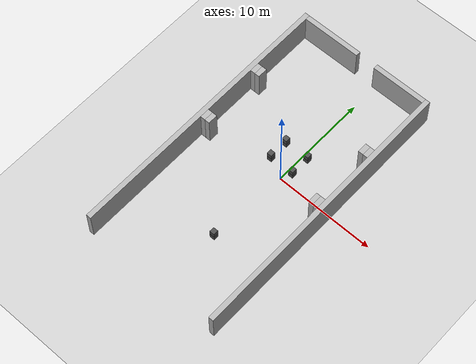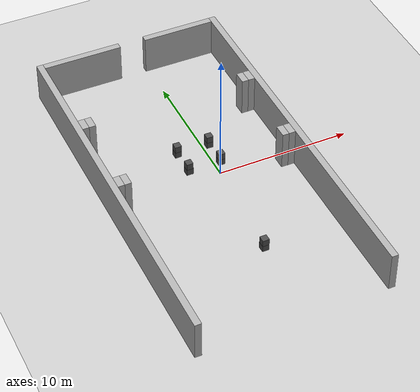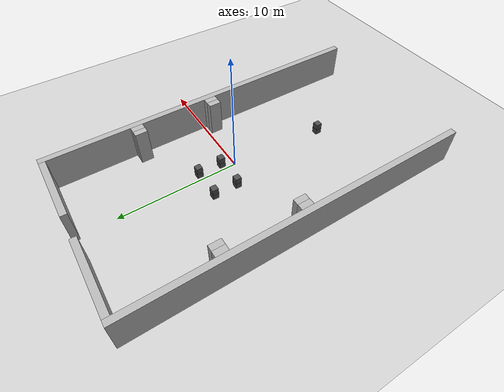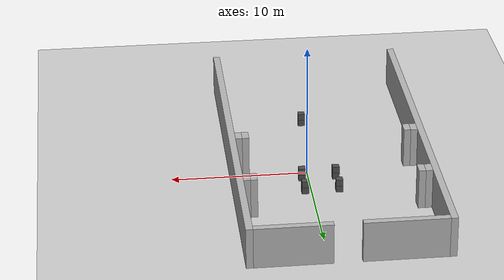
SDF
<sdf version="1.6">
 <world name="default">
  <include><uri>model://ground_plane</uri></include>
  <model name="wall_0">
   <pose frame="sim_world">-8.5 -0.75 1.5 0 0 0</pose>
   <static>True</static>
   <link name="wall_0_link">
    <inertial>
     <mass>100</mass>
     <inertia>
      <ixx>0.166667</ixx>
      <ixy>0</ixy>
      <ixz>0</ixz>
      <iyy>0.166667</iyy>
      <iyz>0</iyz>
      <izz>0.166667</izz>
     </inertia>
    </inertial>
    <collision name="wall_0_collision">
     <geometry><box><size>0.5 28.0 3.0</size></box></geometry>
     <max_contacts>100</max_contacts>
    </collision>
    <visual name="wall_0_visual">
     <geometry><box><size>0.5 28.0 3.0</size></box></geometry>
     <material><ambient>0.7 0.7 0.7 1</ambient><diffuse>0.7 0.7 0.7 1</diffuse></material>
    </visual>
   </link>
  </model>
  <model name="wall_2">
   <pose frame="sim_world">-8.0 -0.75 1.5 0 0 0</pose>
   <static>True</static>
   <link name="wall_2_link">
    <inertial>
     <mass>100</mass>
     <inertia>
      <ixx>0.166667</ixx>
      <ixy>0</ixy>
      <ixz>0</ixz>
      <iyy>0.166667</iyy>
      <iyz>0</iyz>
      <izz>0.166667</izz>
     </inertia>
    </inertial>
    <collision name="wall_2_collision">
     <geometry><box><size>0.5 1.0 3.0</size></box></geometry>
     <max_contacts>100</max_contacts>
    </collision>
    <visual name="wall_2_visual">
     <geometry><box><size>0.5 1.0 3.0</size></box></geometry>
     <material><ambient>0.7 0.7 0.7 1</ambient><diffuse>0.7 0.7 0.7 1</diffuse></material>
    </visual>
   </link>
  </model>
  <model name="wall_3">
   <pose frame="sim_world">-8.0 5.75 1.5 0 0 0</pose>
   <static>True</static>
   <link name="wall_3_link">
    <inertial>
     <mass>100</mass>
     <inertia>
      <ixx>0.166667</ixx>
      <ixy>0</ixy>
      <ixz>0</ixz>
      <iyy>0.166667</iyy>
      <iyz>0</iyz>
      <izz>0.166667</izz>
     </inertia>
    </inertial>
    <collision name="wall_3_collision">
     <geometry><box><size>0.5 1.0 3.0</size></box></geometry>
     <max_contacts>100</max_contacts>
    </collision>
    <visual name="wall_3_visual">
     <geometry><box><size>0.5 1.0 3.0</size></box></geometry>
     <material><ambient>0.7 0.7 0.7 1</ambient><diffuse>0.7 0.7 0.7 1</diffuse></material>
    </visual>
   </link>
  </model>
  <model name="wall_5">
   <pose frame="sim_world">-7.5 -0.75 1.5 0 0 0</pose>
   <static>True</static>
   <link name="wall_5_link">
    <inertial>
     <mass>100</mass>
     <inertia>
      <ixx>0.166667</ixx>
      <ixy>0</ixy>
      <ixz>0</ixz>
      <iyy>0.166667</iyy>
      <iyz>0</iyz>
      <izz>0.166667</izz>
     </inertia>
    </inertial>
    <collision name="wall_5_collision">
     <geometry><box><size>0.5 1.0 3.0</size></box></geometry>
     <max_contacts>100</max_contacts>
    </collision>
    <visual name="wall_5_visual">
     <geometry><box><size>0.5 1.0 3.0</size></box></geometry>
     <material><ambient>0.7 0.7 0.7 1</ambient><diffuse>0.7 0.7 0.7 1</diffuse></material>
    </visual>
   </link>
  </model>
  <model name="wall_6">
   <pose frame="sim_world">-7.5 5.75 1.5 0 0 0</pose>
   <static>True</static>
   <link name="wall_6_link">
    <inertial>
     <mass>100</mass>
     <inertia>
      <ixx>0.166667</ixx>
      <ixy>0</ixy>
      <ixz>0</ixz>
      <iyy>0.166667</iyy>
      <iyz>0</iyz>
      <izz>0.166667</izz>
     </inertia>
    </inertial>
    <collision name="wall_6_collision">
     <geometry><box><size>0.5 1.0 3.0</size></box></geometry>
     <max_contacts>100</max_contacts>
    </collision>
    <visual name="wall_6_visual">
     <geometry><box><size>0.5 1.0 3.0</size></box></geometry>
     <material><ambient>0.7 0.7 0.7 1</ambient><diffuse>0.7 0.7 0.7 1</diffuse></material>
    </visual>
   </link>
  </model>
  <model name="wall_8">
   <pose frame="sim_world">4.5 -0.75 1.5 0 0 0</pose>
   <static>True</static>
   <link name="wall_8_link">
    <inertial>
     <mass>100</mass>
     <inertia>
      <ixx>0.166667</ixx>
      <ixy>0</ixy>
      <ixz>0</ixz>
      <iyy>0.166667</iyy>
      <iyz>0</iyz>
      <izz>0.166667</izz>
     </inertia>
    </inertial>
    <collision name="wall_8_collision">
     <geometry><box><size>0.5 1.0 3.0</size></box></geometry>
     <max_contacts>100</max_contacts>
    </collision>
    <visual name="wall_8_visual">
     <geometry><box><size>0.5 1.0 3.0</size></box></geometry>
     <material><ambient>0.7 0.7 0.7 1</ambient><diffuse>0.7 0.7 0.7 1</diffuse></material>
    </visual>
   </link>
  </model>
  <model name="wall_9">
   <pose frame="sim_world">4.5 5.75 1.5 0 0 0</pose>
   <static>True</static>
   <link name="wall_9_link">
    <inertial>
     <mass>100</mass>
     <inertia>
      <ixx>0.166667</ixx>
      <ixy>0</ixy>
      <ixz>0</ixz>
      <iyy>0.166667</iyy>
      <iyz>0</iyz>
      <izz>0.166667</izz>
     </inertia>
    </inertial>
    <collision name="wall_9_collision">
     <geometry><box><size>0.5 1.0 3.0</size></box></geometry>
     <max_contacts>100</max_contacts>
    </collision>
    <visual name="wall_9_visual">
     <geometry><box><size>0.5 1.0 3.0</size></box></geometry>
     <material><ambient>0.7 0.7 0.7 1</ambient><diffuse>0.7 0.7 0.7 1</diffuse></material>
    </visual>
   </link>
  </model>
  <model name="wall_11">
   <pose frame="sim_world">5.0 -0.75 1.5 0 0 0</pose>
   <static>True</static>
   <link name="wall_11_link">
    <inertial>
     <mass>100</mass>
     <inertia>
      <ixx>0.166667</ixx>
      <ixy>0</ixy>
      <ixz>0</ixz>
      <iyy>0.166667</iyy>
      <iyz>0</iyz>
      <izz>0.166667</izz>
     </inertia>
    </inertial>
    <collision name="wall_11_collision">
     <geometry><box><size>0.5 1.0 3.0</size></box></geometry>
     <max_contacts>100</max_contacts>
    </collision>
    <visual name="wall_11_visual">
     <geometry><box><size>0.5 1.0 3.0</size></box></geometry>
     <material><ambient>0.7 0.7 0.7 1</ambient><diffuse>0.7 0.7 0.7 1</diffuse></material>
    </visual>
   </link>
  </model>
  <model name="wall_12">
   <pose frame="sim_world">5.0 5.75 1.5 0 0 0</pose>
   <static>True</static>
   <link name="wall_12_link">
    <inertial>
     <mass>100</mass>
     <inertia>
      <ixx>0.166667</ixx>
      <ixy>0</ixy>
      <ixz>0</ixz>
      <iyy>0.166667</iyy>
      <iyz>0</iyz>
      <izz>0.166667</izz>
     </inertia>
    </inertial>
    <collision name="wall_12_collision">
     <geometry><box><size>0.5 1.0 3.0</size></box></geometry>
     <max_contacts>100</max_contacts>
    </collision>
    <visual name="wall_12_visual">
     <geometry><box><size>0.5 1.0 3.0</size></box></geometry>
     <material><ambient>0.7 0.7 0.7 1</ambient><diffuse>0.7 0.7 0.7 1</diffuse></material>
    </visual>
   </link>
  </model>
  <model name="wall_13">
   <pose frame="sim_world">5.5 -0.75 1.5 0 0 0</pose>
   <static>True</static>
   <link name="wall_13_link">
    <inertial>
     <mass>100</mass>
     <inertia>
      <ixx>0.166667</ixx>
      <ixy>0</ixy>
      <ixz>0</ixz>
      <iyy>0.166667</iyy>
      <iyz>0</iyz>
      <izz>0.166667</izz>
     </inertia>
    </inertial>
    <collision name="wall_13_collision">
     <geometry><box><size>0.5 28.0 3.0</size></box></geometry>
     <max_contacts>100</max_contacts>
    </collision>
    <visual name="wall_13_visual">
     <geometry><box><size>0.5 28.0 3.0</size></box></geometry>
     <material><ambient>0.7 0.7 0.7 1</ambient><diffuse>0.7 0.7 0.7 1</diffuse></material>
    </visual>
   </link>
  </model>
  <model name="wall_15">
   <pose frame="sim_world">-5.25 13.0 1.5 0 0 0</pose>
   <static>True</static>
   <link name="wall_15_link">
    <inertial>
     <mass>100</mass>
     <inertia>
      <ixx>0.166667</ixx>
      <ixy>0</ixy>
      <ixz>0</ixz>
      <iyy>0.166667</iyy>
      <iyz>0</iyz>
      <izz>0.166667</izz>
     </inertia>
    </inertial>
    <collision name="wall_15_collision">
     <geometry><box><size>6.0 0.5 3.0</size></box></geometry>
     <max_contacts>100</max_contacts>
    </collision>
    <visual name="wall_15_visual">
     <geometry><box><size>6.0 0.5 3.0</size></box></geometry>
     <material><ambient>0.7 0.7 0.7 1</ambient><diffuse>0.7 0.7 0.7 1</diffuse></material>
    </visual>
   </link>
  </model>
  <model name="wall_16">
   <pose frame="sim_world">2.5 13.0 1.5 0 0 0</pose>
   <static>True</static>
   <link name="wall_16_link">
    <inertial>
     <mass>100</mass>
     <inertia>
      <ixx>0.166667</ixx>
      <ixy>0</ixy>
      <ixz>0</ixz>
      <iyy>0.166667</iyy>
      <iyz>0</iyz>
      <izz>0.166667</izz>
     </inertia>
    </inertial>
    <collision name="wall_16_collision">
     <geometry><box><size>5.5 0.5 3.0</size></box></geometry>
     <max_contacts>100</max_contacts>
    </collision>
    <visual name="wall_16_visual">
     <geometry><box><size>5.5 0.5 3.0</size></box></geometry>
     <material><ambient>0.7 0.7 0.7 1</ambient><diffuse>0.7 0.7 0.7 1</diffuse></material>
    </visual>
   </link>
  </model>
  <model name="box_0">
   <pose frame="sim_world">-2.0 1.0 0.25 0 -0 0</pose>
   <static>True</static>
   <link name="box_0_link">
    <inertial>
     <mass>100</mass>
     <inertia>
      <ixx>0.166667</ixx>
      <ixy>0</ixy>
      <ixz>0</ixz>
      <iyy>0.166667</iyy>
      <iyz>0</iyz>
      <izz>0.166667</izz>
     </inertia>
    </inertial>
    <collision name="box_0_collision">
     <geometry><box><size>0.5 0.5 0.5</size></box></geometry>
     <max_contacts>100</max_contacts>
    </collision>
    <visual name="box_0_visual">
     <geometry><box><size>0.5 0.5 0.5</size></box></geometry>
     <material><ambient>0.3 0.3 0.3 1</ambient><diffuse>0.3 0.3 0.3 1</diffuse></material>
    </visual>
   </link>
  </model>
  <model name="box_1">
   <pose frame="sim_world">-2.0 1.0 0.75 0 -0 0</pose>
   <static>True</static>
   <link name="box_1_link">
    <inertial>
     <mass>100</mass>
     <inertia>
      <ixx>0.166667</ixx>
      <ixy>0</ixy>
      <ixz>0</ixz>
      <iyy>0.166667</iyy>
      <iyz>0</iyz>
      <izz>0.166667</izz>
     </inertia>
    </inertial>
    <collision name="box_1_collision">
     <geometry><box><size>0.5 0.5 0.5</size></box></geometry>
     <max_contacts>100</max_contacts>
    </collision>
    <visual name="box_1_visual">
     <geometry><box><size>0.5 0.5 0.5</size></box></geometry>
     <material><ambient>0.3 0.3 0.3 1</ambient><diffuse>0.3 0.3 0.3 1</diffuse></material>
    </visual>
   </link>
  </model>
  <model name="box_2">
   <pose frame="sim_world">-2.0 3.0 0.25 0 -0 0</pose>
   <static>True</static>
   <link name="box_2_link">
    <inertial>
     <mass>100</mass>
     <inertia>
      <ixx>0.166667</ixx>
      <ixy>0</ixy>
      <ixz>0</ixz>
      <iyy>0.166667</iyy>
      <iyz>0</iyz>
      <izz>0.166667</izz>
     </inertia>
    </inertial>
    <collision name="box_2_collision">
     <geometry><box><size>0.5 0.5 0.5</size></box></geometry>
     <max_contacts>100</max_contacts>
    </collision>
    <visual name="box_2_visual">
     <geometry><box><size>0.5 0.5 0.5</size></box></geometry>
     <material><ambient>0.3 0.3 0.3 1</ambient><diffuse>0.3 0.3 0.3 1</diffuse></material>
    </visual>
   </link>
  </model>
  <model name="box_3">
   <pose frame="sim_world">-2.0 3.0 0.75 0 -0 0</pose>
   <static>True</static>
   <link name="box_3_link">
    <inertial>
     <mass>100</mass>
     <inertia>
      <ixx>0.166667</ixx>
      <ixy>0</ixy>
      <ixz>0</ixz>
      <iyy>0.166667</iyy>
      <iyz>0</iyz>
      <izz>0.166667</izz>
     </inertia>
    </inertial>
    <collision name="box_3_collision">
     <geometry><box><size>0.5 0.5 0.5</size></box></geometry>
     <max_contacts>100</max_contacts>
    </collision>
    <visual name="box_3_visual">
     <geometry><box><size>0.5 0.5 0.5</size></box></geometry>
     <material><ambient>0.3 0.3 0.3 1</ambient><diffuse>0.3 0.3 0.3 1</diffuse></material>
    </visual>
   </link>
  </model>
  <model name="box_20">
   <pose frame="sim_world">-0.5 -8.0 0.25 0 -0 0</pose>
   <static>True</static>
   <link name="box_20_link">
    <inertial>
     <mass>100</mass>
     <inertia>
      <ixx>0.166667</ixx>
      <ixy>0</ixy>
      <ixz>0</ixz>
      <iyy>0.166667</iyy>
      <iyz>0</iyz>
      <izz>0.166667</izz>
     </inertia>
    </inertial>
    <collision name="box_20_collision">
     <geometry><box><size>0.5 0.5 0.5</size></box></geometry>
     <max_contacts>100</max_contacts>
    </collision>
    <visual name="box_20_visual">
     <geometry><box><size>0.5 0.5 0.5</size></box></geometry>
     <material><ambient>0.3 0.3 0.3 1</ambient><diffuse>0.3 0.3 0.3 1</diffuse></material>
    </visual>
   </link>
  </model>
  <model name="box_21">
   <pose frame="sim_world">-0.5 -8.0 0.75 0 -0 0</pose>
   <static>True</static>
   <link name="box_21_link">
    <inertial>
     <mass>100</mass>
     <inertia>
      <ixx>0.166667</ixx>
      <ixy>0</ixy>
      <ixz>0</ixz>
      <iyy>0.166667</iyy>
      <iyz>0</iyz>
      <izz>0.166667</izz>
     </inertia>
    </inertial>
    <collision name="box_21_collision">
     <geometry><box><size>0.5 0.5 0.5</size></box></geometry>
     <max_contacts>100</max_contacts>
    </collision>
    <visual name="box_21_visual">
     <geometry><box><size>0.5 0.5 0.5</size></box></geometry>
     <material><ambient>0.3 0.3 0.3 1</ambient><diffuse>0.3 0.3 0.3 1</diffuse></material>
    </visual>
   </link>
  </model>
  <model name="box_22">
   <pose frame="sim_world">0.5 1.0 0.25 0 -0 0</pose>
   <static>True</static>
   <link name="box_22_link">
    <inertial>
     <mass>100</mass>
     <inertia>
      <ixx>0.166667</ixx>
      <ixy>0</ixy>
      <ixz>0</ixz>
      <iyy>0.166667</iyy>
      <iyz>0</iyz>
      <izz>0.166667</izz>
     </inertia>
    </inertial>
    <collision name="box_22_collision">
     <geometry><box><size>0.5 0.5 0.5</size></box></geometry>
     <max_contacts>100</max_contacts>
    </collision>
    <visual name="box_22_visual">
     <geometry><box><size>0.5 0.5 0.5</size></box></geometry>
     <material><ambient>0.3 0.3 0.3 1</ambient><diffuse>0.3 0.3 0.3 1</diffuse></material>
    </visual>
   </link>
  </model>
  <model name="box_23">
   <pose frame="sim_world">0.5 1.0 0.75 0 -0 0</pose>
   <static>True</static>
   <link name="box_23_link">
    <inertial>
     <mass>100</mass>
     <inertia>
      <ixx>0.166667</ixx>
      <ixy>0</ixy>
      <ixz>0</ixz>
      <iyy>0.166667</iyy>
      <iyz>0</iyz>
      <izz>0.166667</izz>
     </inertia>
    </inertial>
    <collision name="box_23_collision">
     <geometry><box><size>0.5 0.5 0.5</size></box></geometry>
     <max_contacts>100</max_contacts>
    </collision>
    <visual name="box_23_visual">
     <geometry><box><size>0.5 0.5 0.5</size></box></geometry>
     <material><ambient>0.3 0.3 0.3 1</ambient><diffuse>0.3 0.3 0.3 1</diffuse></material>
    </visual>
   </link>
  </model>
  <model name="box_24">
   <pose frame="sim_world">0.5 3.0 0.25 0 -0 0</pose>
   <static>True</static>
   <link name="box_24_link">
    <inertial>
     <mass>100</mass>
     <inertia>
      <ixx>0.166667</ixx>
      <ixy>0</ixy>
      <ixz>0</ixz>
      <iyy>0.166667</iyy>
      <iyz>0</iyz>
      <izz>0.166667</izz>
     </inertia>
    </inertial>
    <collision name="box_24_collision">
     <geometry><box><size>0.5 0.5 0.5</size></box></geometry>
     <max_contacts>100</max_contacts>
    </collision>
    <visual name="box_24_visual">
     <geometry><box><size>0.5 0.5 0.5</size></box></geometry>
     <material><ambient>0.3 0.3 0.3 1</ambient><diffuse>0.3 0.3 0.3 1</diffuse></material>
    </visual>
   </link>
  </model>
  <model name="box_25">
   <pose frame="sim_world">0.5 3.0 0.75 0 -0 0</pose>
   <static>True</static>
   <link name="box_25_link">
    <inertial>
     <mass>100</mass>
     <inertia>
      <ixx>0.166667</ixx>
      <ixy>0</ixy>
      <ixz>0</ixz>
      <iyy>0.166667</iyy>
      <iyz>0</iyz>
      <izz>0.166667</izz>
     </inertia>
    </inertial>
    <collision name="box_25_collision">
     <geometry><box><size>0.5 0.5 0.5</size></box></geometry>
     <max_contacts>100</max_contacts>
    </collision>
    <visual name="box_25_visual">
     <geometry><box><size>0.5 0.5 0.5</size></box></geometry>
     <material><ambient>0.3 0.3 0.3 1</ambient><diffuse>0.3 0.3 0.3 1</diffuse></material>
    </visual>
   </link>
  </model>
  <model name="ground_plane"><link name="ground_plane"/></model>
 </world>
</sdf>
